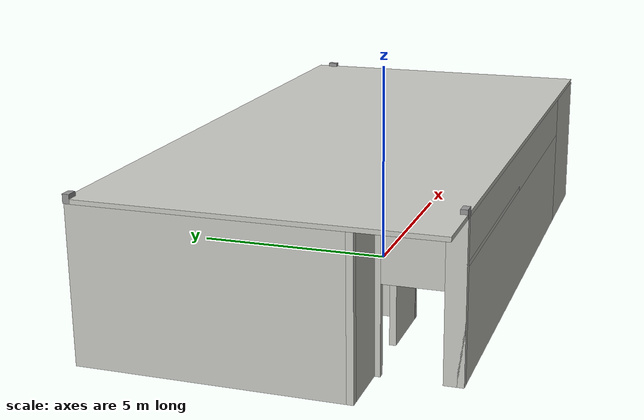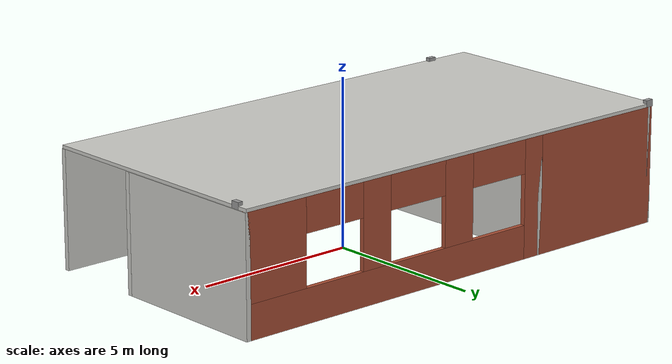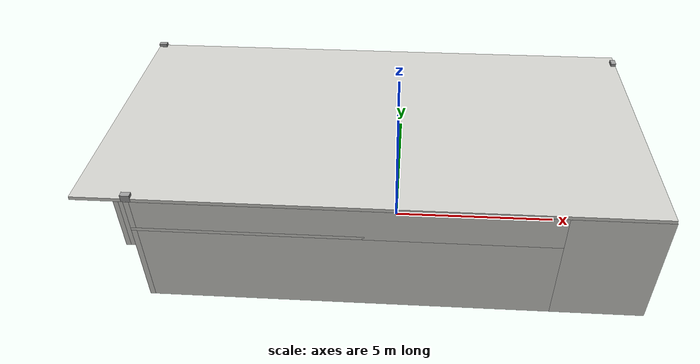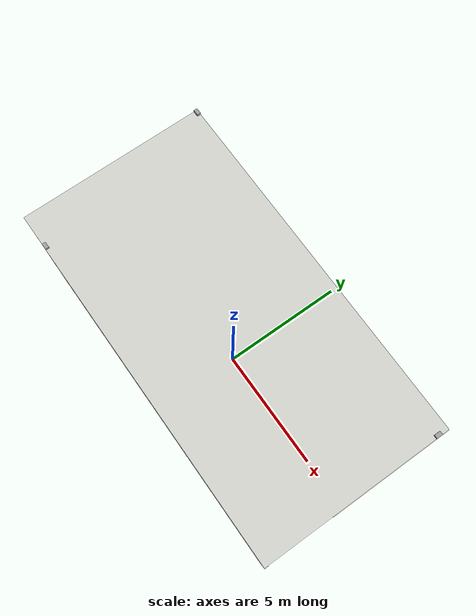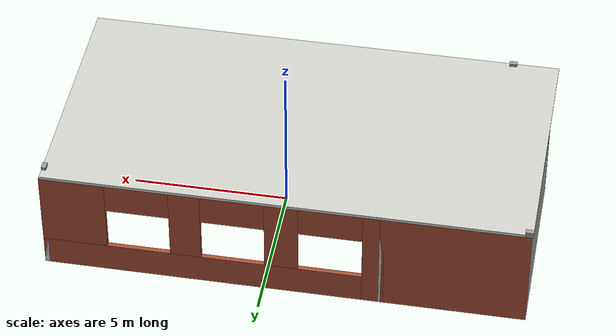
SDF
<?xml version='1.0'?>
<sdf version='1.6'>
  <model name='moog'>
    <pose frame=''>-0.642214 0.206 0 0 -0 0</pose>
    <link name='Floor_5'>
      <collision name='Floor_5_Collision'>
        <geometry>
          <box>
            <size>11.25 2.5 0.1</size>
          </box>
        </geometry>
        <pose frame=''>0 0 0.05 0 -0 0</pose>
      </collision>
      <visual name='Floor_5_Visual'>
        <pose frame=''>0 0 0.05 0 -0 0</pose>
        <geometry>
          <box>
            <size>11.25 2.5 0.1</size>
          </box>
        </geometry>
        <material>
          <script>
            <uri>file://media/materials/scripts/gazebo.material</uri>
            <name>Gazebo/CeilingTiled</name>
          </script>
          <ambient>1 1 1 1</ambient>
        </material>
      </visual>
      <pose frame=''>-0.606786 -2.675 2.5 0 -0 0</pose>
    </link>
    <link name='Floor_6'>
      <collision name='Floor_6_Collision'>
        <geometry>
          <box>
            <size>15.2094 7.84584 0.1</size>
          </box>
        </geometry>
        <pose frame=''>0 0 0.05 0 -0 0</pose>
      </collision>
      <visual name='Floor_6_Visual'>
        <pose frame=''>0 0 0.05 0 -0 0</pose>
        <geometry>
          <box>
            <size>15.2094 7.84584 0.1</size>
          </box>
        </geometry>
        <material>
          <script>
            <uri>file://media/materials/scripts/gazebo.material</uri>
            <name>Gazebo/CeilingTiled</name>
          </script>
          <ambient>1 1 1 1</ambient>
        </material>
      </visual>
      <pose frame=''>-0.0135 0.000505 3.5 0 -0 0</pose>
    </link>
    <link name='Wall_0'>
      <pose frame=''>-6.15679 -2.925 0 0 -0 1.5708</pose>
      <visual name='Wall_0_Visual_0'>
        <pose frame=''>-0.783287 0 1.75 0 -0 0</pose>
        <geometry>
          <box>
            <size>0.433427 0.15 3.5</size>
          </box>
        </geometry>
        <material>
          <script>
            <uri>file://media/materials/scripts/gazebo.material</uri>
            <name>Gazebo/CeilingTiled</name>
          </script>
          <ambient>1 1 1 1</ambient>
        </material>
      </visual>
      <collision name='Wall_0_Collision_0'>
        <geometry>
          <box>
            <size>0.433427 0.15 3.5</size>
          </box>
        </geometry>
        <pose frame=''>-0.783287 0 1.75 0 -0 0</pose>
      </collision>
      <visual name='Wall_0_Visual_1'>
        <pose frame=''>0.864427 0 1.75 0 -0 0</pose>
        <geometry>
          <box>
            <size>0.271146 0.15 3.5</size>
          </box>
        </geometry>
        <material>
          <script>
            <uri>file://media/materials/scripts/gazebo.material</uri>
            <name>Gazebo/CeilingTiled</name>
          </script>
          <ambient>1 1 1 1</ambient>
        </material>
      </visual>
      <collision name='Wall_0_Collision_1'>
        <geometry>
          <box>
            <size>0.271146 0.15 3.5</size>
          </box>
        </geometry>
        <pose frame=''>0.864427 0 1.75 0 -0 0</pose>
      </collision>
      <visual name='Wall_0_Visual_2'>
        <pose frame=''>0.081141 0 2.75 0 -0 0</pose>
        <geometry>
          <box>
            <size>1.29543 0.15 1.5</size>
          </box>
        </geometry>
        <material>
          <script>
            <uri>file://media/materials/scripts/gazebo.material</uri>
            <name>Gazebo/CeilingTiled</name>
          </script>
          <ambient>1 1 1 1</ambient>
        </material>
      </visual>
      <collision name='Wall_0_Collision_2'>
        <geometry>
          <box>
            <size>1.29543 0.15 1.5</size>
          </box>
        </geometry>
        <pose frame=''>0.081141 0 2.75 0 -0 0</pose>
      </collision>
    </link>
    <link name='Wall_1'>
      <pose frame=''>-4.60679 -2 0 0 -0 0</pose>
      <visual name='Wall_1_Visual_0'>
        <pose frame=''>-1.34098 0 1.75 0 -0 0</pose>
        <geometry>
          <box>
            <size>0.568037 0.15 3.5</size>
          </box>
        </geometry>
        <material>
          <script>
            <uri>file://media/materials/scripts/gazebo.material</uri>
            <name>Gazebo/CeilingTiled</name>
          </script>
          <ambient>1 1 1 1</ambient>
        </material>
      </visual>
      <collision name='Wall_1_Collision_0'>
        <geometry>
          <box>
            <size>0.568037 0.15 3.5</size>
          </box>
        </geometry>
        <pose frame=''>-1.34098 0 1.75 0 -0 0</pose>
      </collision>
      <visual name='Wall_1_Visual_1'>
        <pose frame=''>0.787249 0 1.75 0 -0 0</pose>
        <geometry>
          <box>
            <size>1.6755 0.15 3.5</size>
          </box>
        </geometry>
        <material>
          <script>
            <uri>file://media/materials/scripts/gazebo.material</uri>
            <name>Gazebo/CeilingTiled</name>
          </script>
          <ambient>1 1 1 1</ambient>
        </material>
      </visual>
      <collision name='Wall_1_Collision_1'>
        <geometry>
          <box>
            <size>1.6755 0.15 3.5</size>
          </box>
        </geometry>
        <pose frame=''>0.787249 0 1.75 0 -0 0</pose>
      </collision>
      <visual name='Wall_1_Visual_2'>
        <pose frame=''>-0.553733 0 2.75 0 -0 0</pose>
        <geometry>
          <box>
            <size>1.00646 0.15 1.5</size>
          </box>
        </geometry>
        <material>
          <script>
            <uri>file://media/materials/scripts/gazebo.material</uri>
            <name>Gazebo/CeilingTiled</name>
          </script>
          <ambient>1 1 1 1</ambient>
        </material>
      </visual>
      <collision name='Wall_1_Collision_2'>
        <geometry>
          <box>
            <size>1.00646 0.15 1.5</size>
          </box>
        </geometry>
        <pose frame=''>-0.553733 0 2.75 0 -0 0</pose>
      </collision>
    </link>
    <link name='Wall_10'>
      <collision name='Wall_10_Collision'>
        <geometry>
          <box>
            <size>6 0.15 3.5</size>
          </box>
        </geometry>
        <pose frame=''>0 0 1.75 0 -0 0</pose>
      </collision>
      <visual name='Wall_10_Visual'>
        <pose frame=''>0 0 1.75 0 -0 0</pose>
        <geometry>
          <box>
            <size>6 0.15 3.5</size>
          </box>
        </geometry>
        <material>
          <script>
            <uri>file://media/materials/scripts/gazebo.material</uri>
            <name>Gazebo/CeilingTiled</name>
          </script>
          <ambient>1 1 1 1</ambient>
        </material>
      </visual>
      <pose frame=''>-7.50679 0.925 0 0 -0 1.5708</pose>
    </link>
    <link name='Wall_103'>
      <collision name='Wall_103_Collision'>
        <geometry>
          <box>
            <size>0.25 0.15 0.2</size>
          </box>
        </geometry>
        <pose frame=''>0 0 0.1 0 -0 0</pose>
      </collision>
      <visual name='Wall_103_Visual'>
        <pose frame=''>0 0 0.1 0 -0 0</pose>
        <geometry>
          <box>
            <size>0.25 0.15 0.2</size>
          </box>
        </geometry>
        <material>
          <script>
            <uri>file://media/materials/scripts/gazebo.material</uri>
            <name>Gazebo/Grey</name>
          </script>
          <ambient>1 1 1 1</ambient>
        </material>
      </visual>
      <pose frame=''>7.51621 3.479 3.5 0 0 -1.5708</pose>
    </link>
    <link name='Wall_105'>
      <collision name='Wall_105_Collision'>
        <geometry>
          <box>
            <size>0.25 0.15 0.2</size>
          </box>
        </geometry>
        <pose frame=''>0 0 0.1 0 -0 0</pose>
      </collision>
      <visual name='Wall_105_Visual'>
        <pose frame=''>0 0 0.1 0 -0 0</pose>
        <geometry>
          <box>
            <size>0.25 0.15 0.2</size>
          </box>
        </geometry>
        <material>
          <script>
            <uri>file://media/materials/scripts/gazebo.material</uri>
            <name>Gazebo/Grey</name>
          </script>
          <ambient>1 1 1 1</ambient>
        </material>
      </visual>
      <pose frame=''>-6.152 -3.84742 3.5 0 -0 0</pose>
    </link>
    <link name='Wall_11'>
      <collision name='Wall_11_Collision'>
        <geometry>
          <box>
            <size>4.6 0.15 3.5</size>
          </box>
        </geometry>
        <pose frame=''>0 0 1.75 0 -0 0</pose>
      </collision>
      <visual name='Wall_11_Visual'>
        <pose frame=''>0 0 1.75 0 -0 0</pose>
        <geometry>
          <box>
            <size>4.6 0.15 3.5</size>
          </box>
        </geometry>
        <material>
          <script>
            <uri>file://media/materials/scripts/gazebo.material</uri>
            <name>Gazebo/Bricks</name>
          </script>
          <ambient>1 1 1 1</ambient>
        </material>
      </visual>
      <pose frame=''>-5.28179 3.85 0 0 -0 0</pose>
    </link>
    <link name='Wall_122'>
      <collision name='Wall_122_Collision'>
        <geometry>
          <box>
            <size>2.75 0.15 3.5</size>
          </box>
        </geometry>
        <pose frame=''>0 0 1.75 0 -0 0</pose>
      </collision>
      <visual name='Wall_122_Visual'>
        <pose frame=''>0 0 1.75 0 -0 0</pose>
        <geometry>
          <box>
            <size>2.75 0.15 3.5</size>
          </box>
        </geometry>
        <material>
          <script>
            <uri>file://media/materials/scripts/gazebo.material</uri>
            <name>Gazebo/CeilingTiled</name>
          </script>
          <ambient>1 1 1 1</ambient>
        </material>
      </visual>
      <pose frame=''>6.24321 -3.85 0 0 -0 0</pose>
    </link>
    <link name='Wall_2'>
      <collision name='Wall_2_Collision'>
        <geometry>
          <box>
            <size>6 0.15 3.5</size>
          </box>
        </geometry>
        <pose frame=''>0 0 1.75 0 -0 0</pose>
      </collision>
      <visual name='Wall_2_Visual'>
        <pose frame=''>0 0 1.75 0 -0 0</pose>
        <geometry>
          <box>
            <size>6 0.15 3.5</size>
          </box>
        </geometry>
        <material>
          <script>
            <uri>file://media/materials/scripts/gazebo.material</uri>
            <name>Gazebo/CeilingTiled</name>
          </script>
          <ambient>1 1 1 1</ambient>
        </material>
      </visual>
      <pose frame=''>-3.05679 0.925 0 0 -0 1.5708</pose>
    </link>
    <link name='Wall_3'>
      <pose frame=''>2.24321 3.85 0 0 -0 0</pose>
      <visual name='Wall_3_Visual_0'>
        <pose frame=''>-5.0377 0 1.75 0 -0 0</pose>
        <geometry>
          <box>
            <size>0.674598 0.15 3.5</size>
          </box>
        </geometry>
        <material>
          <script>
            <uri>file://media/materials/scripts/gazebo.material</uri>
            <name>Gazebo/Bricks</name>
          </script>
          <ambient>1 1 1 1</ambient>
        </material>
      </visual>
      <collision name='Wall_3_Collision_0'>
        <geometry>
          <box>
            <size>0.674598 0.15 3.5</size>
          </box>
        </geometry>
        <pose frame=''>-5.0377 0 1.75 0 -0 0</pose>
      </collision>
      <visual name='Wall_3_Visual_1'>
        <pose frame=''>0.337299 0 0.5 0 -0 0</pose>
        <geometry>
          <box>
            <size>10.0754 0.15 1</size>
          </box>
        </geometry>
        <material>
          <script>
            <uri>file://media/materials/scripts/gazebo.material</uri>
            <name>Gazebo/Bricks</name>
          </script>
          <ambient>1 1 1 1</ambient>
        </material>
      </visual>
      <collision name='Wall_3_Collision_1'>
        <geometry>
          <box>
            <size>10.0754 0.15 1</size>
          </box>
        </geometry>
        <pose frame=''>0.337299 0 0.5 0 -0 0</pose>
      </collision>
      <visual name='Wall_3_Visual_2'>
        <pose frame=''>-2.17953 0 2.25 0 -0 0</pose>
        <geometry>
          <box>
            <size>1.04175 0.15 2.5</size>
          </box>
        </geometry>
        <material>
          <script>
            <uri>file://media/materials/scripts/gazebo.material</uri>
            <name>Gazebo/Bricks</name>
          </script>
          <ambient>1 1 1 1</ambient>
        </material>
      </visual>
      <collision name='Wall_3_Collision_2'>
        <geometry>
          <box>
            <size>1.04175 0.15 2.5</size>
          </box>
        </geometry>
        <pose frame=''>-2.17953 0 2.25 0 -0 0</pose>
      </collision>
      <visual name='Wall_3_Visual_3'>
        <pose frame=''>0.831805 0 2.25 0 -0 0</pose>
        <geometry>
          <box>
            <size>0.980915 0.15 2.5</size>
          </box>
        </geometry>
        <material>
          <script>
            <uri>file://media/materials/scripts/gazebo.material</uri>
            <name>Gazebo/Bricks</name>
          </script>
          <ambient>1 1 1 1</ambient>
        </material>
      </visual>
      <collision name='Wall_3_Collision_3'>
        <geometry>
          <box>
            <size>0.980915 0.15 2.5</size>
          </box>
        </geometry>
        <pose frame=''>0.831805 0 2.25 0 -0 0</pose>
      </collision>
      <visual name='Wall_3_Visual_4'>
        <pose frame=''>4.34863 0 2.25 0 -0 0</pose>
        <geometry>
          <box>
            <size>2.05274 0.15 2.5</size>
          </box>
        </geometry>
        <material>
          <script>
            <uri>file://media/materials/scripts/gazebo.material</uri>
            <name>Gazebo/Bricks</name>
          </script>
          <ambient>1 1 1 1</ambient>
        </material>
      </visual>
      <collision name='Wall_3_Collision_4'>
        <geometry>
          <box>
            <size>2.05274 0.15 2.5</size>
          </box>
        </geometry>
        <pose frame=''>4.34863 0 2.25 0 -0 0</pose>
      </collision>
      <visual name='Wall_3_Visual_5'>
        <pose frame=''>-3.7004 0 3 0 -0 0</pose>
        <geometry>
          <box>
            <size>2 0.15 1</size>
          </box>
        </geometry>
        <material>
          <script>
            <uri>file://media/materials/scripts/gazebo.material</uri>
            <name>Gazebo/Bricks</name>
          </script>
          <ambient>1 1 1 1</ambient>
        </material>
      </visual>
      <collision name='Wall_3_Collision_5'>
        <geometry>
          <box>
            <size>2 0.15 1</size>
          </box>
        </geometry>
        <pose frame=''>-3.7004 0 3 0 -0 0</pose>
      </collision>
      <visual name='Wall_3_Visual_6'>
        <pose frame=''>-0.658652 0 3 0 -0 0</pose>
        <geometry>
          <box>
            <size>2 0.15 1</size>
          </box>
        </geometry>
        <material>
          <script>
            <uri>file://media/materials/scripts/gazebo.material</uri>
            <name>Gazebo/Bricks</name>
          </script>
          <ambient>1 1 1 1</ambient>
        </material>
      </visual>
      <collision name='Wall_3_Collision_6'>
        <geometry>
          <box>
            <size>2 0.15 1</size>
          </box>
        </geometry>
        <pose frame=''>-0.658652 0 3 0 -0 0</pose>
      </collision>
      <visual name='Wall_3_Visual_7'>
        <pose frame=''>2.32226 0 3 0 -0 0</pose>
        <geometry>
          <box>
            <size>2 0.15 1</size>
          </box>
        </geometry>
        <material>
          <script>
            <uri>file://media/materials/scripts/gazebo.material</uri>
            <name>Gazebo/Bricks</name>
          </script>
          <ambient>1 1 1 1</ambient>
        </material>
      </visual>
      <collision name='Wall_3_Collision_7'>
        <geometry>
          <box>
            <size>2 0.15 1</size>
          </box>
        </geometry>
        <pose frame=''>2.32226 0 3 0 -0 0</pose>
      </collision>
    </link>
    <link name='Wall_4'>
      <collision name='Wall_4_Collision'>
        <geometry>
          <box>
            <size>5 0.15 3.5</size>
          </box>
        </geometry>
        <pose frame=''>0 0 1.75 0 -0 0</pose>
      </collision>
      <visual name='Wall_4_Visual'>
        <pose frame=''>0 0 1.75 0 -0 0</pose>
        <geometry>
          <box>
            <size>5 0.15 3.5</size>
          </box>
        </geometry>
        <material>
          <script>
            <uri>file://media/materials/scripts/gazebo.material</uri>
            <name>Gazebo/CeilingTiled</name>
          </script>
          <ambient>1 1 1 1</ambient>
        </material>
      </visual>
      <pose frame=''>7.54321 1.425 0 0 0 -1.5708</pose>
    </link>
    <link name='Wall_5'>
      <collision name='Wall_5_Collision'>
        <geometry>
          <box>
            <size>2.75 0.15 3.5</size>
          </box>
        </geometry>
        <pose frame=''>0 0 1.75 0 -0 0</pose>
      </collision>
      <visual name='Wall_5_Visual'>
        <pose frame=''>0 0 1.75 0 -0 0</pose>
        <geometry>
          <box>
            <size>2.75 0.15 3.5</size>
          </box>
        </geometry>
        <material>
          <script>
            <uri>file://media/materials/scripts/gazebo.material</uri>
            <name>Gazebo/CeilingTiled</name>
          </script>
          <ambient>1 1 1 1</ambient>
        </material>
      </visual>
      <pose frame=''>6.24321 -1 0 0 -0 3.14159</pose>
    </link>
    <link name='Wall_6'>
      <pose frame=''>4.94321 -2.425 0 0 0 -1.5708</pose>
      <visual name='Wall_6_Visual_0'>
        <pose frame=''>-0.860625 0 1.75 0 -0 0</pose>
        <geometry>
          <box>
            <size>1.27875 0.15 3.5</size>
          </box>
        </geometry>
        <material>
          <script>
            <uri>file://media/materials/scripts/gazebo.material</uri>
            <name>Gazebo/CeilingTiled</name>
          </script>
          <ambient>1 1 1 1</ambient>
        </material>
      </visual>
      <collision name='Wall_6_Collision_0'>
        <geometry>
          <box>
            <size>1.27875 0.15 3.5</size>
          </box>
        </geometry>
        <pose frame=''>-0.860625 0 1.75 0 -0 0</pose>
      </collision>
      <visual name='Wall_6_Visual_1'>
        <pose frame=''>1.32511 0 1.75 0 -0 0</pose>
        <geometry>
          <box>
            <size>0.349779 0.15 3.5</size>
          </box>
        </geometry>
        <material>
          <script>
            <uri>file://media/materials/scripts/gazebo.material</uri>
            <name>Gazebo/CeilingTiled</name>
          </script>
          <ambient>1 1 1 1</ambient>
        </material>
      </visual>
      <collision name='Wall_6_Collision_1'>
        <geometry>
          <box>
            <size>0.349779 0.15 3.5</size>
          </box>
        </geometry>
        <pose frame=''>1.32511 0 1.75 0 -0 0</pose>
      </collision>
      <visual name='Wall_6_Visual_2'>
        <pose frame=''>0.464486 0 2.75 0 -0 0</pose>
        <geometry>
          <box>
            <size>1.37147 0.15 1.5</size>
          </box>
        </geometry>
        <material>
          <script>
            <uri>file://media/materials/scripts/gazebo.material</uri>
            <name>Gazebo/CeilingTiled</name>
          </script>
          <ambient>1 1 1 1</ambient>
        </material>
      </visual>
      <collision name='Wall_6_Collision_2'>
        <geometry>
          <box>
            <size>1.37147 0.15 1.5</size>
          </box>
        </geometry>
        <pose frame=''>0.464486 0 2.75 0 -0 0</pose>
      </collision>
    </link>
    <link name='Wall_7'>
      <collision name='Wall_7_Collision'>
        <geometry>
          <box>
            <size>11.25 0.15 2.5</size>
          </box>
        </geometry>
        <pose frame=''>0 0 1.25 0 -0 0</pose>
      </collision>
      <visual name='Wall_7_Visual'>
        <pose frame=''>0 0 1.25 0 -0 0</pose>
        <geometry>
          <box>
            <size>11.25 0.15 2.5</size>
          </box>
        </geometry>
        <material>
          <script>
            <uri>file://media/materials/scripts/gazebo.material</uri>
            <name>Gazebo/CeilingTiled</name>
          </script>
          <ambient>1 1 1 1</ambient>
        </material>
      </visual>
      <pose frame=''>-0.606786 -3.85 0 0 -0 3.14159</pose>
    </link>
    <link name='Wall_83'>
      <collision name='Wall_83_Collision'>
        <geometry>
          <box>
            <size>11.25 0.15 1</size>
          </box>
        </geometry>
        <pose frame=''>0 0 0.5 0 -0 0</pose>
      </collision>
      <visual name='Wall_83_Visual'>
        <pose frame=''>0 0 0.5 0 -0 0</pose>
        <geometry>
          <box>
            <size>11.25 0.15 1</size>
          </box>
        </geometry>
        <material>
          <script>
            <uri>file://media/materials/scripts/gazebo.material</uri>
            <name>Gazebo/CeilingTiled</name>
          </script>
          <ambient>1 1 1 1</ambient>
        </material>
      </visual>
      <pose frame=''>-0.606786 -3.85 2.5 0 -0 3.14159</pose>
    </link>
    <link name='Wall_88'>
      <collision name='Wall_88_Collision'>
        <geometry>
          <box>
            <size>8 0.15 1</size>
          </box>
        </geometry>
        <pose frame=''>0 0 0.5 0 -0 0</pose>
      </collision>
      <visual name='Wall_88_Visual'>
        <pose frame=''>0 0 0.5 0 -0 0</pose>
        <geometry>
          <box>
            <size>8 0.15 1</size>
          </box>
        </geometry>
        <material>
          <script>
            <uri>file://media/materials/scripts/gazebo.material</uri>
            <name>Gazebo/CeilingTiled</name>
          </script>
          <ambient>1 1 1 1</ambient>
        </material>
      </visual>
      <pose frame=''>1.01821 -1.5 2.5 0 -0 0</pose>
    </link>
    <link name='Wall_9'>
      <collision name='Wall_9_Collision'>
        <geometry>
          <box>
            <size>1.5 0.15 3.5</size>
          </box>
        </geometry>
        <pose frame=''>0 0 1.75 0 -0 0</pose>
      </collision>
      <visual name='Wall_9_Visual'>
        <pose frame=''>0 0 1.75 0 -0 0</pose>
        <geometry>
          <box>
            <size>1.5 0.15 3.5</size>
          </box>
        </geometry>
        <material>
          <script>
            <uri>file://media/materials/scripts/gazebo.material</uri>
            <name>Gazebo/CeilingTiled</name>
          </script>
          <ambient>1 1 1 1</ambient>
        </material>
      </visual>
      <pose frame=''>-6.83179 -2 0 0 -0 3.14159</pose>
    </link>
    <link name='Wall_94'>
      <collision name='Wall_94_Collision'>
        <geometry>
          <box>
            <size>0.25 0.15 0.2</size>
          </box>
        </geometry>
        <pose frame=''>0 0 0.1 0 -0 0</pose>
      </collision>
      <visual name='Wall_94_Visual'>
        <pose frame=''>0 0 0.1 0 -0 0</pose>
        <geometry>
          <box>
            <size>0.25 0.15 0.2</size>
          </box>
        </geometry>
        <material>
          <script>
            <uri>file://media/materials/scripts/gazebo.material</uri>
            <name>Gazebo/Grey</name>
          </script>
          <ambient>1 1 1 1</ambient>
        </material>
      </visual>
      <pose frame=''>-7.49321 3.84843 3.5 0 -0 3.14159</pose>
    </link>
    <static>1</static>
  </model>
</sdf>
